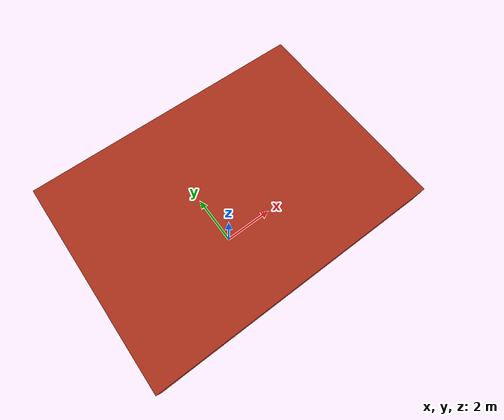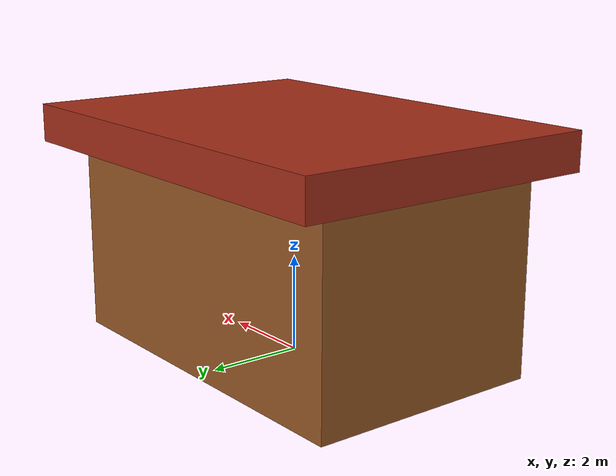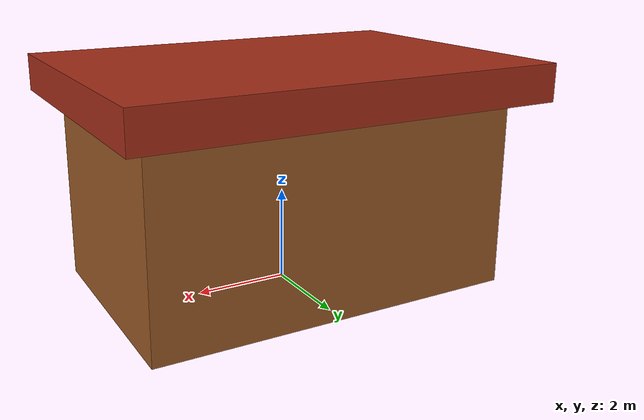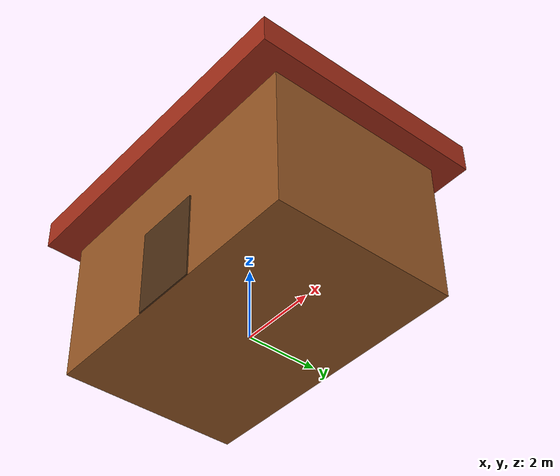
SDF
<?xml version="1.0" ?>
<sdf version="1.9">
  <!-- Simple barn built from SDF primitives. Placed far from the wheat
       field so it's a distant landmark visible from drone altitude. -->
  <model name="barn">
    <static>true</static>
    <link name="link">
      <!-- Main body -->
      <visual name="body">
        <pose>0 0 2 0 0 0</pose>
        <cast_shadows>false</cast_shadows>
        <geometry>
          <box><size>8 5 4</size></box>
        </geometry>
        <material>
          <ambient>0.45 0.25 0.1 1</ambient>
          <diffuse>0.6 0.35 0.15 1</diffuse>
          <specular>0.1 0.1 0.1 1</specular>
        </material>
      </visual>
      <!-- Roof (tilted box) -->
      <visual name="roof">
        <pose>0 0 4.5 0 0 0</pose>
        <cast_shadows>false</cast_shadows>
        <geometry>
          <box><size>9 6.5 0.8</size></box>
        </geometry>
        <material>
          <ambient>0.5 0.12 0.08 1</ambient>
          <diffuse>0.65 0.18 0.1 1</diffuse>
          <specular>0.15 0.1 0.1 1</specular>
        </material>
      </visual>
      <!-- Door -->
      <visual name="door">
        <pose>0 -2.51 1.2 0 0 0</pose>
        <cast_shadows>false</cast_shadows>
        <geometry>
          <box><size>1.8 0.05 2.4</size></box>
        </geometry>
        <material>
          <ambient>0.2 0.12 0.05 1</ambient>
          <diffuse>0.3 0.18 0.08 1</diffuse>
          <specular>0.05 0.05 0.05 1</specular>
        </material>
      </visual>
      <!-- Simple collision for the whole barn -->
      <collision name="collision">
        <pose>0 0 2.5 0 0 0</pose>
        <geometry>
          <box><size>9 6.5 5</size></box>
        </geometry>
      </collision>
    </link>
  </model>
</sdf>
